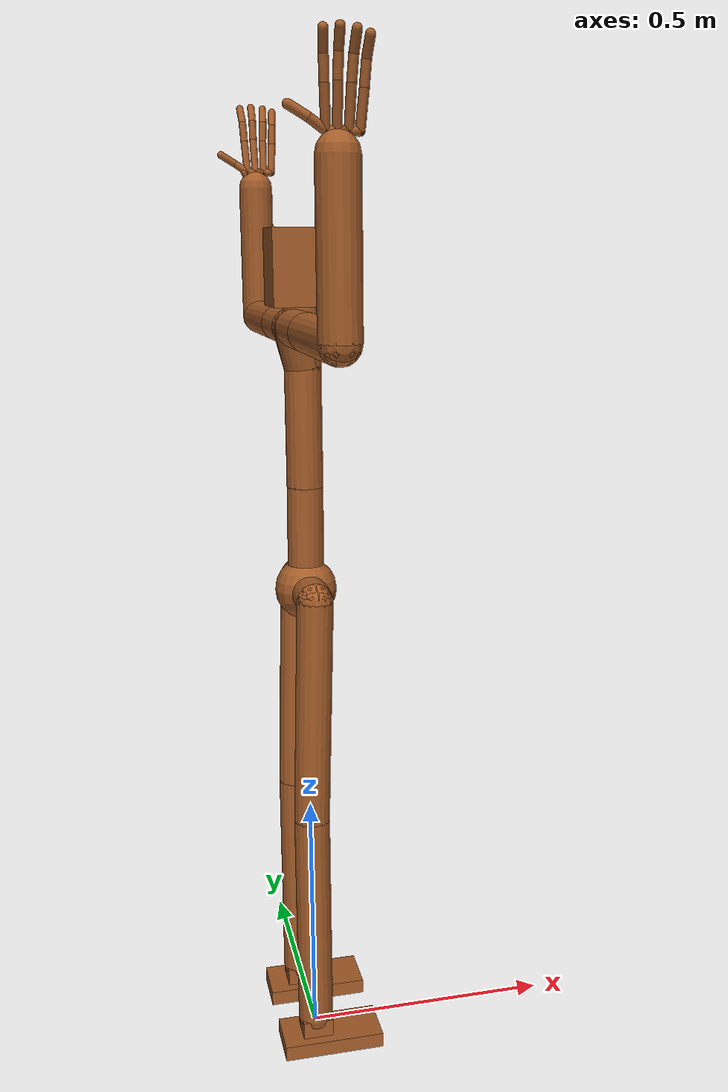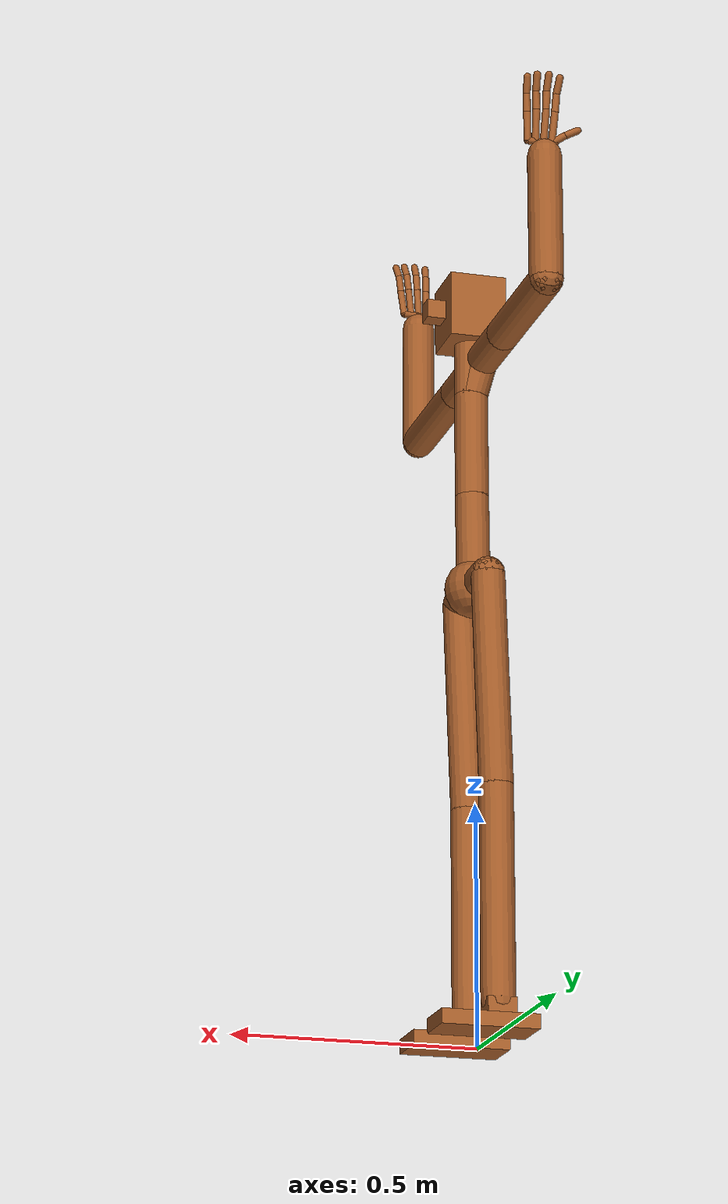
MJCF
<mujoco model="common-rig-h">
    <!--
            Robot Intelligence Lab
            Common Rig (Custom Humanoid) model

            @ Contact us : taemoon-jeong (motor_moon94@korea.ac.kr)
    -->
    <compiler coordinate="local" inertiafromgeom="true" angle="radian"/>

    <default>
        <joint limited="true" damping="1" armature="0"/>
        <geom contype="1" condim="3" margin="0.001" solref=".02 1" solimp=".8 .8 .01" material="matgeom"/>
        <motor ctrlrange="-.4 .4" ctrllimited="true"/>

        <default class="hand">
        	<joint limited="true"/>
            <position ctrllimited="true" kp="1"/>
		</default>
    </default>

    <option timestep="0.005" iterations="50" tolerance="1e-10" solver="Newton" jacobian="dense" cone="pyramidal"/>
    <size nconmax="50" njmax="200" nstack="10000"/>

    <visual>
        <map force="0.1" zfar="30"/>
        <rgba haze="0.15 0.25 0.35 1"/>
        <quality shadowsize="2048"/>
        <global offwidth="800" offheight="800"/>
    </visual>

    <asset>
        <texture name="texgeom" type="cube" builtin="flat" mark="cross" width="127" height="1278"
            rgb1="0.8 0.6 0.4" rgb2="0.8 0.6 0.4" markrgb="1 1 1" random="0.01"/>
        <material name="matgeom" texture="texgeom" texuniform="true" rgba="0.8 0.6 0.4 1.0"/>
    </asset>

    <worldbody>

        <body name="base" pos="0 0 0.960348">
            <freejoint name="base"/>
            <geom name="base" type="sphere" pos="0 0 0" size="0.06"/>
            <body name="torso" pos="0 0 0" euler="0 0 0">
                <geom name="root2spine" type="capsule" fromto="0 0 0 0.00194939 0 0.2017038"  size="0.035" density="2226"/>
                <joint name="root1" type="hinge" pos="0 0 0" axis="1 0 0" range="-0.872222 0.872222" damping="60" stiffness="600" armature="0.02" />
                <joint name="root2" type="hinge" pos="0 0 0" axis="0 1 0" range="-0.523333 2.616667" damping="60" stiffness="600" armature="0.02" />
                <joint name="root3" type="hinge" pos="0 0 0" axis="0 0 1" range="-1.395556 1.395556" damping="60" stiffness="600" armature="0.02" />
                <body name="spine" pos="0.00194939 0 0.2017038" euler="0 0 0">
                    <geom name="spine2neck" type="capsule" fromto="0 0 0 0 0 0.2263381"  size="0.035" density="2226"/>
                    <joint name="spine" type="hinge" pos="0 0 0" axis="0 1 0" range="-0.436111 0.785" damping="60" stiffness="600" armature="0.02" />
                    <joint name="spinex" type="hinge" pos="0 0 0" axis="1 0 0" range="-0.436111 0.785" damping="60" stiffness="600" armature="0.02"/>
                    <joint name="spinez" type="hinge" pos="0 0 0" axis="0 0 1" range="-0.436111 0.785" damping="60" stiffness="600" armature="0.02"/>
                    <body name="neck" pos="0 0 0.2263381" euler="0 0 0">
                        <geom name="neck2rclavicle" type="capsule" fromto="0 0 0 -0.0182683 -0.0119726 0.0730251"  size="0.035"/>
                        <geom name="neck2lclavicle" type="capsule" fromto="0 0 0 -0.0182683 0.0119726 0.0730251"  size="0.035"/>
                        <geom name="neck2head" type="capsule" fromto="0 0 0 0 0 0.1817364"  size="0.035"/>
                        <body name="right_clavicle" pos="-0.0182683 -0.0119726 0.0730251" euler="0 0 0">
                            <geom name="rclavicle2rshoulder" type="capsule" fromto="0 0 0 0 -0.01 0"  size="0.035"/>
                            <joint name="rc" type="hinge" pos="0 0 0" axis="1 0 0" range="-0.261793 0.261793" damping="60" stiffness="600" armature="0.02"/>
                            <body name="right_shoulder" pos="0 -0.01 0" euler="0 0 0">
                                <geom name="rshoulder" type="capsule" fromto="0 0 0 0 -0.145151 0"  size="0.035"/>
                                <joint name="rs1" type="hinge" pos="0 0 0" axis="0 -1 0" range="-3.141592 3.141592" stiffness="200" damping="20" armature="0.0051"/>
                                <body name="right_shoulder2" pos="0 -0.145151 0" euler="0 -1.570796 0">
                                    <geom name="rshoulder2relbow" type="capsule" fromto="0 0 0 0 -0.291422 0"  size="0.035"/>
                                    <joint name="rs2" type="hinge" pos="0 0 0" axis="0 0 1" range="-2.006111 2.006111" stiffness="200" damping="20" armature="0.0068" />
                                    <body name="right_elbow" pos="0 -0.291422 0" euler="0 0 1.570796">
                                        <geom name="relbow2rwrist" type="capsule" fromto="0 0 0 0 -0.270311 0"  size="0.035"/>
                                        <joint name="re" type="hinge" pos="0 0 0" axis="0 0 1" range="-2.61666666667 2.61666666667" stiffness="150" damping="15" armature="0.0028"/>
                                        <body name="right_wrist" pos="0 -0.270311 0" euler="0 -1.570796 0">
                                            <geom name="rwrist2rmiddle" type="capsule" fromto="0 0 0 0 -0.032330 -0.003781" size="0.0075"/>
                                            <joint name="rw1" type="hinge" pos="0 0 0" axis="0 -1 0" range="-3.141592 3.141592" damping="5" stiffness="50" armature="0.02"/>
                                            <joint name="rw2" type="hinge" pos="0 0 0" axis="1 0 0" range="-3.141592 3.141592" damping="5" stiffness="50" armature="0.02"/>
                                            <body name="rmiddle_l0" pos="0 -0.032330 -0.003781" euler="0 0 0">
                                                <geom name="rmiddle2rthumb" type="capsule" fromto="0 0 0 0.016798 0 0" size="0.0075"/>
                                                <body name="rthumb_l1" pos="0.016798 0 0" euler="0 0 0">
                                                    <geom name="rthumb_l12" type="capsule" fromto="0 0 0 0.025917 -0.017108 0.005257" size="0.0075"/>
                                                    <joint name="rthumb_q1" type="hinge" pos="0 0 0" axis="0 -1 0" range="-2.094395 -0.01" damping="5" stiffness="50" armature="0.02"/>
                                                        <body name="rthumb_l2" pos="0.025917 -0.017108 0.005257" euler="0 0 0">
                                                            <geom name="rthumb_l2end" type="capsule" fromto="0 0 0 0.029296 -0.017082 -0.002240" size="0.0075"/>
                                                            <joint name="rthumb_q2" type="hinge" pos="0 0 0" axis="0 0 -1" range="0.01 2.094395" damping="5" stiffness="50" armature="0.02"/>
                                                                <body name="rthumb_end" pos="0.029296 -0.017082 -0.002240" euler="0 0 0"/>
                                                        </body>
                                                </body>
                                                <geom name="rmiddle2rindex" type="capsule" fromto="0 0 0 0.016798 0 0" size="0.0075"/>
                                                <body name="rindex_l0" pos="0.016798 0 0" euler="0 0 0">
                                                    <geom name="rindex_l01" type="capsule" fromto="0 0 0 0.003874 -0.063541 0.013052" size="0.0075"/>
                                                    <body name="rindex_l1" pos="0.003874 -0.063541 0.013052" euler="0 0 0">
                                                        <geom name="rindex_l12" type="capsule" fromto="0 0 0 0.001741 -0.038053 0.006304" size="0.0075"/>
                                                        <joint name="rindex_q1" type="hinge" pos="0 0 0" axis="1 0 0" range="0.01 1.570796" damping="5" stiffness="50" armature="0.02"/>
                                                            <body name="rindex_l2" pos="0.001741 -0.038053 0.006304" euler="0 0 0">
                                                                <geom name="rindex_l2end" type="capsule" fromto="0 0 0 0.002766 -0.029346 0.015357" size="0.0075"/>
                                                                <joint name="rindex_q2" type="hinge" pos="0 0 0" axis="1 0 0" range="0.01 1.570796" damping="5" stiffness="50" armature="0.02"/>
                                                                    <body name="rindex_end" pos="0.002766 -0.029346 0.015357" euler="0 0 0"/>
                                                            </body>
                                                    </body>
                                                </body>
                                                <geom name="rmiddle_l01" type="capsule" fromto="0 0 0 0.001167 -0.06673 0.015291" size="0.0075"/>
                                                <body name="rmiddle_l1" pos="0.001167 -0.06673 0.015291" euler="0 0 0">
                                                    <geom name="rmiddle_l12" type="capsule" fromto="0 0 0 -0.000267 -0.038091 0.006303" size="0.0075"/>
                                                    <joint name="rmiddle_q1" type="hinge" pos="0 0 0" axis="1 0 0" range="0.01 1.570796" damping="5" stiffness="50" armature="0.02"/>
                                                        <body name="rmiddle_l2" pos="-0.000267 -0.038091 0.006303" euler="0 0 0">
                                                            <geom name="rmiddle_l2end" type="capsule" fromto="0 0 0 0.000396 -0.029433 0.015435" size="0.0075"/>
                                                            <joint name="rmiddle_q2" type="hinge" pos="0 0 0" axis="1 0 0" range="0.01 1.570796" damping="5" stiffness="50" armature="0.02"/>
                                                                <body name="rmiddle_end" pos="0.000396 -0.029433 0.015435" euler="0 0 0"/>
                                                        </body>
                                                </body>
                                                <geom name="rmiddle2rring" type="capsule" fromto="0 0 0 -0.017370 0 0" size="0.0075"/>
                                                <body name="rring_l0" pos="-0.017370 0 0" euler="0 0 0">
                                                    <geom name="rring_l01" type="capsule" fromto="0 0 0 -0.00163 -0.06437 0.014171" size="0.0075"/>
                                                    <body name="rring_l1" pos="-0.00163 -0.06437 0.014171" euler="0 0 0">
                                                        <geom name="rring_l12" type="capsule" fromto="0 0 0 -0.002238 -0.038029 0.006287" size="0.0075"/>
                                                        <joint name="rring_q1" type="hinge" pos="0 0 0" axis="1 0 0" range="0.01 1.570796" damping="5" stiffness="50" armature="0.02"/>
                                                            <body name="rring_l2" pos="-0.002238 -0.038029 0.006287" euler="0 0 0">
                                                                <geom name="rring_l2end" type="capsule" fromto="0 0 0 -0.001986 -0.029367 0.015437" size="0.0075"/>
                                                                <joint name="rring_q2" type="hinge" pos="0 0 0" axis="1 0 0" range="0.01 1.570796" damping="5" stiffness="50" armature="0.02"/>
                                                                    <body name="rring_end" pos="-0.001986 -0.029367 0.015437" euler="0 0 0"/>
                                                            </body>
                                                    </body>
                                                </body>
                                                <geom name="rmiddle2rpinky" type="capsule" fromto="0 0 0 -0.033830 0 0" size="0.0075"/>
                                                <body name="rpinky_l0" pos="-0.033830 0 0" euler="0 0 0">
                                                    <geom name="rpinky_l01" type="capsule" fromto="0 0 0 -0.00428 -0.05840 0.010943" size="0.0075"/>
                                                    <body name="rpinky_l1" pos="-0.00428 -0.05840 0.010943" euler="0 0 0">
                                                        <geom name="rpinky_l12" type="capsule" fromto="0 0 0 -0.002194 -0.038032 0.006289" size="0.0075 "/>
                                                        <joint name="rpinky_q1" type="hinge" pos="0 0 0" axis="1 0 0" range="0.01 1.570796" damping="5" stiffness="50" armature="0.02"/>
                                                            <body name="rpinky_l2" pos="-0.002194 -0.038032 0.006289" euler="0 0 0">
                                                                <geom name="rpinky_l2end" type="capsule" fromto="0 0 0 -0.002632 -0.029336 0.015400" size="0.0075"/>
                                                                <joint name="rpinky_q2" type="hinge" pos="0 0 0" axis="1 0 0" range="0.01 1.570796" damping="5" stiffness="50" armature="0.02"/>
                                                                    <body name="rpinky_end" pos="-0.002632 -0.029336 0.015400" euler="0 0 0"/>
                                                            </body>
                                                    </body>
                                                </body>
                                            </body>
                                        </body>
                                    </body>
                                </body>
                            </body>
                        </body>
                        <body name="left_clavicle" pos="-0.0182683 0.0119726 0.0730251" euler="0 0 0">
                            <geom name="lclavicle2lshoulder" type="capsule" fromto="0 0 0 0 0.01 0"  size="0.035"/>
                            <joint name="lc" type="hinge" pos="0 0 0" axis="1 0 0" range="-0.261793 0.261793" damping="60" stiffness="600" armature="0.02"/>
                            <body name="left_shoulder" pos="0 0.01 0" euler="0 0 0">
                                <geom name="lshoulder" type="capsule" fromto="0 0 0 0 0.145151 0"  size="0.035"/>
                                <joint name="ls1" type="hinge" pos="0 0 0" axis="0 1 0" range="-3.141592 3.141592" stiffness="200" damping="20" armature="0.0068" />
                                <body name="left_shoulder2" pos="0 0.145151 0" euler="0 1.570796 0">
                                    <geom name="lshoulder2lelbow" type="capsule" fromto="0 0 0 0 0.291422 0"  size="0.035" />
                                    <joint name="ls2" type="hinge" pos="0 0 0" axis="0 0 1" range="-2.006111 2.006111" stiffness="200" damping="20" armature="0.0051" />
                                    <body name="left_elbow" pos="0 0.291422 0" euler="0 0 1.570796">
                                        <geom name="lelbow2lwrist" type="capsule" fromto="0 0 0 0 0.270311 0"  size="0.035" />
                                        <joint name="le" type="hinge" pos="0 0 0" axis="0 0 1" range="-2.61666666667 2.61666666667" stiffness="150" damping="15" armature="0.0028" />
                                        <body name="left_wrist" pos="0 0.270311 0" euler="0 1.570796 0">
                                            <geom name="lwrist2lthumb" type="capsule" fromto="0 0 0 0.024048 0.032330 -0.003781" size="0.0075"/>
                                            <joint name="lw1" type="hinge" pos="0 0 0" axis="0 1 0" range="-3.141592 3.141592" damping="5" stiffness="50" armature="0.02" />
                                            <joint name="lw2" type="hinge" pos="0 0 0" axis="-1 0 0" range="-3.141592 3.141592" damping="5" stiffness="50" armature="0.02" />
                                            <body name="lmiddle_l0" pos="0 0.032330 -0.003781" euler="0 0 0">
                                                <geom name="lmiddle2lthumb" type="capsule" fromto="0 0 0 0.016798 0 0" size="0.0075"/>
                                                <body name="lthumb_l1" pos="0.016798 0 0" euler="0 0 0">
                                                    <geom name="lthumb_l12" type="capsule" fromto="0 0 0 0.025917 0.017108 0.005257" size="0.0075"/>
                                                    <joint name="lthumb_q1" type="hinge" pos="0 0 0" axis="0 -1 0" range="-2.094395 -0.01" damping="5" stiffness="50" armature="0.02"/>
                                                    <body name="lthumb_l2" pos="0.025917 0.017108 0.005257" euler="0 0 0">
                                                        <geom name="lthumb_l2end" type="capsule" fromto="0 0 0 0.029296 0.017082 -0.002240" size="0.0075"/>
                                                        <joint name="lthumb_q2" type="hinge" pos="0 0 0" axis="0 0 1" range="0.01 2.094395" damping="5" stiffness="50" armature="0.02"/>
                                                            <body name="lthumb_end" pos="0.029296 0.017082 -0.002240" euler="0 0 0"/>
                                                    </body>
                                                </body>
                                                <geom name="lmiddle2rindex" type="capsule" fromto="0 0 0 0.016798 0 0" size="0.0075"/>
                                                <body name="lindex_l0" pos="0.016798 0 0" euler="0 0 0">
                                                    <geom name="lindex_l01" type="capsule" fromto="0 0 0 0.003874 0.063541 0.013052" size="0.0075"/>
                                                    <body name="lindex_l1" pos="0.003874 0.063541 0.013052" euler="0 0 0">
                                                        <geom name="lindex_l12" type="capsule" fromto="0 0 0 0.001741 0.038053 0.006304" size="0.0075"/>
                                                        <joint name="lindex_q1" type="hinge" pos="0 0 0" axis="-1 0 0" range="0.01 1.570796" damping="5" stiffness="50" armature="0.02"/>
                                                        <body name="lindex_l2" pos="0.001741 0.038053 0.006304" euler="0 0 0">
                                                            <geom name="lindex_l2end" type="capsule" fromto="0 0 0 0.002766 0.029346 0.015357" size="0.0075"/>
                                                            <joint name="lindex_q2" type="hinge" pos="0 0 0" axis="-1 0 0" range="0.01 1.570796" damping="5" stiffness="50" armature="0.02"/>
                                                                <body name="lindex_end" pos="0.002766 0.029346 0.015357" euler="0 0 0"/>
                                                        </body>
                                                    </body>
                                                </body>
                                                <geom name="lmiddle_l01" type="capsule" fromto="0 0 0 0.001167 0.06673 0.015291" size="0.0075"/>
                                                <body name="lmiddle_l1" pos="0.001167 0.06673 0.015291" euler="0 0 0">
                                                    <geom name="lmiddle_l12" type="capsule" fromto="0 0 0 -0.000267 0.038091 0.006303" size="0.0075"/>
                                                    <joint name="lmiddle_q1" type="hinge" pos="0 0 0" axis="-1 0 0" range="0.01 1.570796" damping="5" stiffness="50" armature="0.02"/>
                                                        <body name="lmiddle_l2" pos="-0.000267 0.038091 0.006303" euler="0 0 0">
                                                            <geom name="lmiddle_l2end" type="capsule" fromto="0 0 0 0.000396 0.029433 0.015435" size="0.0075"/>
                                                            <joint name="lmiddle_q2" type="hinge" pos="0 0 0" axis="-1 0 0" range="0.01 1.570796" damping="5" stiffness="50" armature="0.02"/>
                                                                <body name="lmiddle_end" pos="0.000396 0.029433 0.015435" euler="0 0 0"/>
                                                        </body>
                                                </body>
                                                <geom name="lmiddle2rring" type="capsule" fromto="0 0 0 -0.017370 0 0" size="0.0075"/>
                                                <body name="lring_l0" pos="-0.017370 0 0" euler="0 0 0">
                                                    <geom name="lring_l01" type="capsule" fromto="0 0 0 -0.00163 0.06437 0.014171" size="0.0075"/>
                                                    <body name="lring_l1" pos="-0.00163 0.06437 0.014171" euler="0 0 0">
                                                        <geom name="lring_l12" type="capsule" fromto="0 0 0 -0.002238 0.038029 0.006287" size="0.0075"/>
                                                        <joint name="lring_q1" type="hinge" pos="0 0 0" axis="-1 0 0" range="0.01 1.570796" damping="5" stiffness="50" armature="0.02"/>
                                                            <body name="lring_l2" pos="-0.002238 0.038029 0.006287" euler="0 0 0">
                                                                <geom name="lring_l2end" type="capsule" fromto="0 0 0 -0.001986 0.029367 0.015437" size="0.0075"/>
                                                                <joint name="lring_q2" type="hinge" pos="0 0 0" axis="-1 0 0" range="0.01 1.570796" damping="5" stiffness="50" armature="0.02"/>
                                                                    <body name="lring_end" pos="-0.001986 0.029367 0.015437" euler="0 0 0"/>
                                                            </body>
                                                    </body>
                                                </body>
                                                <geom name="lmiddle2lpinky" type="capsule" fromto="0 0 0 -0.033830 0 0" size="0.0075"/>
                                                <body name="lpinky_l0" pos="-0.033830 0 0" euler="0 0 0">
                                                    <geom name="lpinky_l01" type="capsule" fromto="0 0 0 -0.00428 0.05840 0.010943" size="0.0075"/>
                                                    <body name="lpinky_l1" pos="-0.00428 0.05840 0.010943" euler="0 0 0">
                                                        <geom name="lpinky_l12" type="capsule" fromto="0 0 0 -0.002194 0.038032 0.006289" size="0.0075"/>
                                                        <joint name="lpinky_q1" type="hinge" pos="0 0 0" axis="-1 0 0" range="0.01 1.570796" damping="5" stiffness="50" armature="0.02"/>
                                                            <body name="lpinky_l2" pos="-0.002194 0.038032 0.006289" euler="0 0 0">
                                                                <geom name="lpinky_l2end" type="capsule" fromto="0 0 0 -0.002632 0.029336 0.015400" size="0.0075"/>
                                                                <joint name="lpinky_q2" type="hinge" pos="0 0 0" axis="-1 0 0" range="0.01 1.570796" damping="5" stiffness="50" armature="0.02"/>
                                                                    <body name="lpinky_end" pos="-0.002632 0.029336 0.015400" euler="0 0 0"/>
                                                            </body>
                                                    </body>
                                                </body>
                                            </body>
                                        </body>
                                    </body>
                                </body>
                            </body>
                        </body>
                        <body name="head" pos="0 0 0.1817364" euler="0 0 0">
                            <geom name="head" type="box" pos="0 0 0" size="0.06 0.06 0.07" />
                            <geom name="nose" type="box" pos="0.05 0 0" size="0.05 0.02 0.02" />
                            <joint name="head1" type="hinge" pos="0 0 0" axis="1 0 0" range="-1.57 1.57" damping="5" stiffness="50" armature="0.02" />
                            <joint name="head2" type="hinge" pos="0 0 0" axis="0 1 0" range="-1.57 1.57" damping="5" stiffness="50" armature="0.02" />
                            <joint name="head3" type="hinge" pos="0 0 0" axis="0 0 1" range="-1.57 1.57" damping="5" stiffness="50" armature="0.02" />
                        </body>
                    </body>
                </body>
            </body>
            <body name="right_leg" pos="0 0 0" euler="0 0 0">
                <geom name="base2rpelvis" type="capsule" fromto="0 0 0 0 -0.100371 0"  size="0.035" />
                <body name="right_pelvis" pos="0 -0.100371 0" euler="0 0 0">
                    <geom name="rpelvis2rknee" type="capsule" fromto="0 0 0 -0.013579 0.00242305 -0.445198"  size="0.035" />
                    <joint name="rp1" type="hinge" pos="0 0 0" axis="1 0 0" range="-1.57 0.785" damping="30" stiffness="900" armature="0.01" />
                    <joint name="rp2" type="hinge" pos="0 0 0" axis="0 1 0" range="-3.141592 2.267778" damping="30" stiffness="900" armature="0.01" />
                    <joint name="rp3" type="hinge" pos="0 0 0" axis="0 0 1" range="-0.52333333333 0.52333333333" damping="30" stiffness="900" armature="0.01" />
                    <body name="right_knee" pos="-0.013579 0.00242305 -0.445198" euler="0 0 0">
                        <geom name="rknee2rankle" type="capsule" fromto="0 0 0 0 0 -0.436307"  size="0.035" />
                        <joint name="rk" type="hinge" pos="0 0 0" axis="0 1 0" range="0.0175 2.0944" damping="30" stiffness="900" armature="0.0060" />
                        <body name="right_ankle" pos="0 0 -0.436307" euler="0 0 0">
                            <geom name="rankle" type="box" pos="0 0 -0.025" size="0.03 0.03 0.025" />
                            <geom name="rfoot" type="box" pos="0.03 0 -0.05" size="0.1 0.05 0.015" />
                            <joint name="ra1" type="hinge" pos="0 0 0" axis="0 1 0" range="-1.57 0.697778" stiffness="600" damping="20" armature="0.0008" />
                            <joint name="ra2" type="hinge" pos="0 0 0" axis="1 0 0" range="-0.261667 0.261667" stiffness="600" damping="20" armature="0.0006" />
                            <joint name="ra3" type="hinge" pos="0 0 0" axis="0 0 1" range="-0.52333333333 0.52333333333" stiffness="600" damping="20" armature="0.0006" />
                        </body>
                    </body>
                </body>
            </body>
            <body name="left_leg" pos="0 0 0" euler="0 0 0">
                <geom name="base2lpelvis" type="capsule" fromto="0 0 0 0 0.100371 0"  size="0.035" />
                <body name="left_pelvis" pos="0 0.100371 0" euler="0 0 0">
                    <geom name="lpelvis2lknee" type="capsule" fromto="0 0 0 -0.013579 -0.00242347 -0.445198"  size="0.035" />
                    <joint name="lp1" type="hinge" pos="0 0 0" axis="1 0 0" range="-0.785 1.57" damping="30" stiffness="900" armature="0.01" />
                    <joint name="lp2" type="hinge" pos="0 0 0" axis="0 1 0" range="-3.141592 2.267778" damping="30" stiffness="900" armature="0.01" />
                    <joint name="lp3" type="hinge" pos="0 0 0" axis="0 0 1" range="-0.52333333333 0.52333333333" damping="30" stiffness="900" armature="0.01" />
                    <body name="left_knee" pos="-0.013579 -0.00242347 -0.445198" euler="0 0 0">
                        <geom name="lknee2lankle" type="capsule" fromto="0 0 0 0 0 -0.436307"  size="0.035" />
                        <joint name="lk" type="hinge" pos="0 0 0" axis="0 1 0" range="0.0175 2.0944" damping="30" stiffness="900" armature="0.0060" />
                        <body name="left_ankle" pos="0 0 -0.436307" euler="0 0 0">
                            <geom name="lankle" type="box" pos="0 0 -0.025" size="0.03 0.03 0.025" />
                            <geom name="lfoot" type="box" pos="0.03 0 -0.05" size="0.1 0.05 0.015" />
                            <joint name="la1" type="hinge" pos="0 0 0" axis="0 1 0" range="-1.57 0.697778" stiffness="600" damping="20" armature="0.0008" />
                            <joint name="la2" type="hinge" pos="0 0 0" axis="1 0 0" range="-0.261667 0.261667" stiffness="600" damping="20" armature="0.0006" />
                            <joint name="la3" type="hinge" pos="0 0 0" axis="0 0 1" range="-0.52333333333 0.52333333333" stiffness="600" damping="20" armature="0.0006" />
                        </body>
                    </body>
                </body>
            </body>
        </body>
    </worldbody>

    <actuator>
        <!-- right arm -->
        <motor name="rs1"         gear="100" joint="rs1" />
        <motor name="rs2"         gear="100" joint="rs2" />
        <motor name="re"          gear="200" joint="re" />
        <motor name="rw1"         gear="100" joint="rw1" />
        <motor name="rw2"         gear="100" joint="rw2" />

        <!-- left arm -->
        <motor name="ls1"         gear="100" joint="ls1" />
        <motor name="ls2"         gear="100" joint="ls2" />
        <motor name="le"          gear="200" joint="le" />
        <motor name="lw1"         gear="100" joint="lw1" />
        <motor name="lw2"         gear="100" joint="lw2" />

        <!-- right hand -->
        <position name="rthumb_q1"  class="hand"  joint="rthumb_q1"  ctrlrange="0 180"/>
        <position name="rthumb_q2"  class="hand"  joint="rthumb_q2"  ctrlrange="0 180"/>
        <position name="rindex_q1"  class="hand"  joint="rindex_q1"  ctrlrange="0 360"/>
        <position name="rindex_q2"  class="hand"  joint="rindex_q2"  ctrlrange="0 360"/>
        <position name="rmiddle_q1" class="hand"  joint="rmiddle_q1" ctrlrange="0 360"/>
        <position name="rmiddle_q2" class="hand"  joint="rmiddle_q2" ctrlrange="0 360"/>
        <position name="rring_q1"   class="hand"  joint="rring_q1"   ctrlrange="0 360"/>
        <position name="rring_q2"   class="hand"  joint="rring_q2"   ctrlrange="0 360"/>
        <position name="rpinky_q1"  class="hand"  joint="rpinky_q1"  ctrlrange="0 360"/>
        <position name="rpinky_q2"  class="hand"  joint="rpinky_q2"  ctrlrange="0 360"/>

        <!-- left hand -->
        <position name="lthumb_q1"  class="hand"  joint="lthumb_q1"  ctrlrange="0 180"/>
        <position name="lthumb_q2"  class="hand"  joint="lthumb_q2"  ctrlrange="0 180"/>
        <position name="lindex_q1"  class="hand"  joint="lindex_q1"  ctrlrange="0 360"/>
        <position name="lindex_q2"  class="hand"  joint="lindex_q2"  ctrlrange="0 360"/>
        <position name="lmiddle_q1" class="hand"  joint="lmiddle_q1" ctrlrange="0 360"/>
        <position name="lmiddle_q2" class="hand"  joint="lmiddle_q2" ctrlrange="0 360"/>
        <position name="lring_q1"   class="hand"  joint="lring_q1"   ctrlrange="0 360"/>
        <position name="lring_q2"   class="hand"  joint="lring_q2"   ctrlrange="0 360"/>
        <position name="lpinky_q1"  class="hand"  joint="lpinky_q1"  ctrlrange="0 360"/>
        <position name="lpinky_q2"  class="hand"  joint="lpinky_q2"  ctrlrange="0 360"/>

    </actuator>

    <!-- exclude -->
    <contact>
        <exclude body1="neck" body2="right_shoulder"/>
        <exclude body1="spine" body2="right_shoulder"/>
        <exclude body1="right_shoulder" body2="right_elbow"/>
        <exclude body1="right_elbow" body2="right_wrist"/>

        <exclude body1="neck" body2="left_shoulder"/>
        <exclude body1="spine" body2="left_shoulder"/>
        <exclude body1="left_shoulder" body2="left_elbow"/>
        <exclude body1="left_elbow" body2="left_wrist"/>

        <exclude body1="neck" body2="spine"/>
        <exclude body1="spine" body2="torso"/>
        <exclude body1="torso" body2="base"/>

        <exclude body1="torso" body2="right_pelvis"/>
        <exclude body1="right_leg" body2="base"/>
        <exclude body1="right_leg" body2="torso"/>
        <exclude body1="right_leg" body2="right_pelvis"/>
        <exclude body1="right_pelvis" body2="right_knee"/>
        <exclude body1="right_knee" body2="right_ankle"/>

        <exclude body1="right_leg" body2="left_leg"/>

        <exclude body1="torso" body2="left_pelvis"/>
        <exclude body1="left_leg" body2="base"/>
        <exclude body1="left_leg" body2="torso"/>
        <exclude body1="left_leg" body2="left_pelvis"/>
        <exclude body1="left_pelvis" body2="left_knee"/>
        <exclude body1="left_knee" body2="left_ankle"/>

        <exclude body1="right_wrist" body2="rthumb_l1"/>
        <exclude body1="rthumb_l1" body2="rthumb_l2"/>
        <exclude body1="rthumb_l2" body2="rthumb_end"/>

        <exclude body1="rindex_l1" body2="rindex_l2"/>
        <exclude body1="rindex_l2" body2="rindex_end"/>

        <exclude body1="rmiddle_l1" body2="rmiddle_l2"/>
        <exclude body1="rmiddle_l2" body2="rmiddle_end"/>

        <exclude body1="rring_l1" body2="rring_l2"/>
        <exclude body1="rring_l2" body2="rring_end"/>

        <exclude body1="rpinky_l1" body2="rpinky_l2"/>
        <exclude body1="rpinky_l2" body2="rpinky_end"/>

        <exclude body1="left_wrist" body2="lthumb_l1"/>
        <exclude body1="lthumb_l1" body2="lthumb_l2"/>
        <exclude body1="lthumb_l2" body2="lthumb_end"/>

        <exclude body1="lindex_l1" body2="lindex_l2"/>
        <exclude body1="lindex_l2" body2="lindex_end"/>

        <exclude body1="lmiddle_l1" body2="lmiddle_l2"/>
        <exclude body1="lmiddle_l2" body2="lmiddle_end"/>

        <exclude body1="lring_l1" body2="lring_l2"/>
        <exclude body1="lring_l2" body2="lring_end"/>

        <exclude body1="lpinky_l1" body2="lpinky_l2"/>
        <exclude body1="lpinky_l2" body2="lpinky_end"/>
    </contact>

</mujoco>
